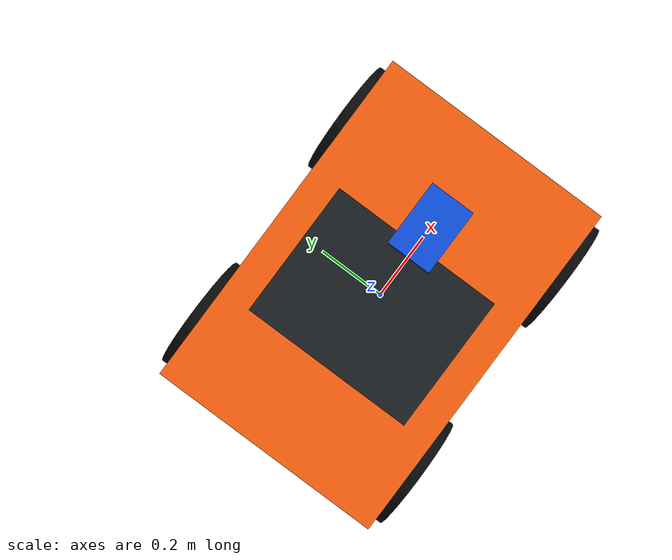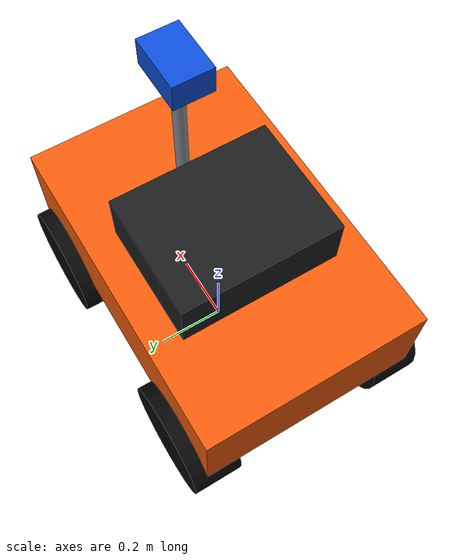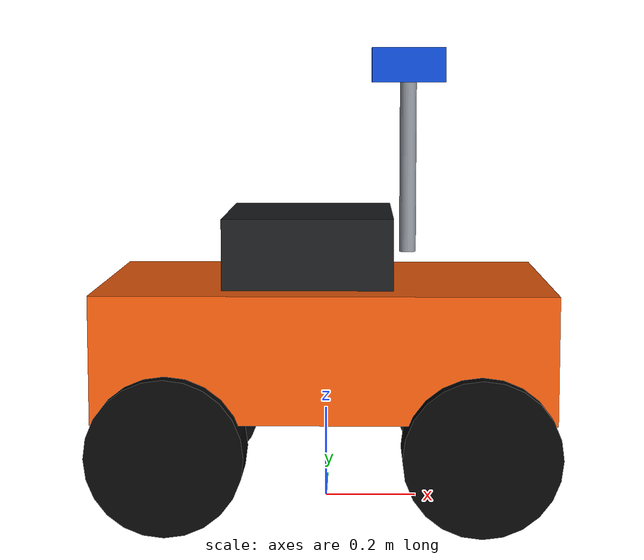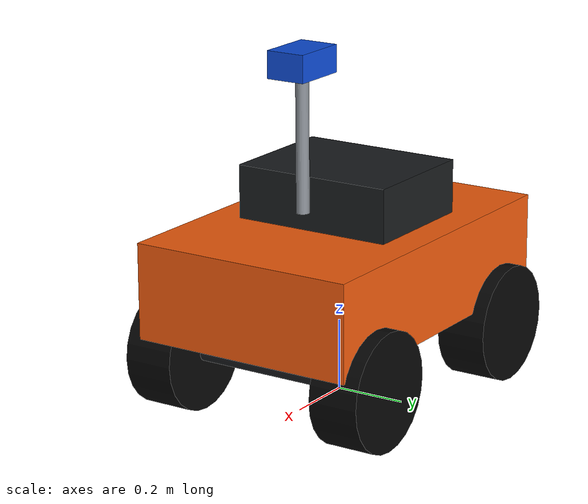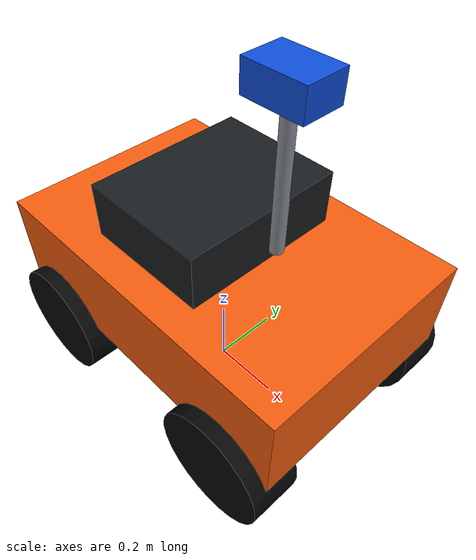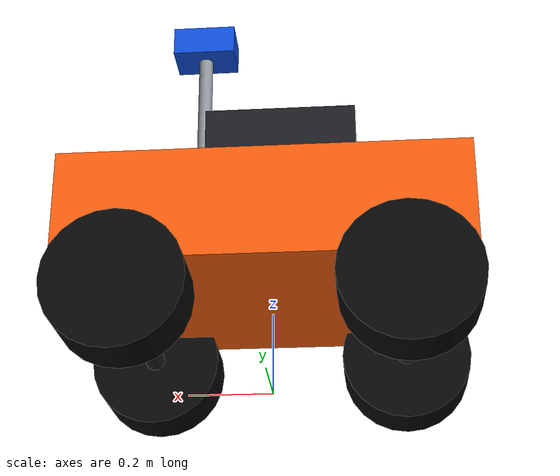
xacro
<?xml version="1.0"?>
<!-- Hunter-inspired Ackermann vehicle model for RViz / future Gazebo migration.
     Simple primitives preserve accurate dimensions, link frames and joint axes. -->
<robot name="ackermann_hunter" xmlns:xacro="http://www.ros.org/wiki/xacro">
  <xacro:arg name="prefix" default=""/>
  <xacro:property name="prefix" value="$(arg prefix)"/>

  <!-- ======================= Hunter-like dimensions ======================= -->
  <xacro:property name="wheelbase"       value="0.65142"/>
  <xacro:property name="track"           value="0.584"/>
  <xacro:property name="wheel_radius"    value="0.164"/>
  <xacro:property name="wheel_width"     value="0.142"/>
  <xacro:property name="body_length"     value="0.964"/>
  <xacro:property name="body_width"      value="0.644"/>
  <xacro:property name="body_height"     value="0.268"/>
  <xacro:property name="base_height"     value="0.360"/>
  <xacro:property name="wheel_z"         value="${wheel_radius - base_height}"/>

  <xacro:property name="body_mass"       value="35.0"/>
  <xacro:property name="wheel_mass"      value="2.0"/>
  <xacro:property name="steer_mass"      value="0.45"/>

  <xacro:macro name="box_inertia" params="m x y z">
    <inertial>
      <mass value="${m}"/>
      <inertia ixx="${m * (y*y + z*z) / 12.0}" ixy="0.0" ixz="0.0"
               iyy="${m * (x*x + z*z) / 12.0}" iyz="0.0"
               izz="${m * (x*x + y*y) / 12.0}"/>
    </inertial>
  </xacro:macro>

  <!-- Wheel axis is the link-frame Y axis. -->
  <xacro:macro name="wheel_inertia" params="m r w">
    <inertial>
      <mass value="${m}"/>
      <inertia ixx="${m * (3.0*r*r + w*w) / 12.0}" ixy="0.0" ixz="0.0"
               iyy="${m * r*r / 2.0}" iyz="0.0"
               izz="${m * (3.0*r*r + w*w) / 12.0}"/>
    </inertial>
  </xacro:macro>

  <material name="hunter_orange"><color rgba="0.95 0.36 0.05 1.0"/></material>
  <material name="hunter_dark"><color rgba="0.10 0.11 0.12 1.0"/></material>
  <material name="tyre_black"><color rgba="0.025 0.025 0.025 1.0"/></material>
  <material name="metal_gray"><color rgba="0.55 0.57 0.60 1.0"/></material>
  <material name="sensor_blue"><color rgba="0.05 0.30 0.85 1.0"/></material>

  <!-- ========================== Base / footprint ========================== -->
  <link name="${prefix}base_footprint"/>
  <joint name="${prefix}base_joint" type="fixed">
    <parent link="${prefix}base_footprint"/>
    <child link="${prefix}base_link"/>
    <origin xyz="0 0 ${base_height}" rpy="0 0 0"/>
  </joint>

  <link name="${prefix}base_link">
    <visual>
      <origin xyz="0 0 0" rpy="0 0 0"/>
      <geometry><box size="${body_length} ${body_width} ${body_height}"/></geometry>
      <material name="hunter_orange"/>
    </visual>
    <collision>
      <origin xyz="0 0 0" rpy="0 0 0"/>
      <geometry><box size="${body_length} ${body_width} ${body_height}"/></geometry>
    </collision>
    <xacro:box_inertia m="${body_mass}" x="${body_length}" y="${body_width}" z="${body_height}"/>
  </link>

  <link name="${prefix}cabin_link">
    <visual>
      <origin xyz="-0.035 0 ${body_height/2.0 + 0.075}" rpy="0 0 0"/>
      <geometry><box size="0.36 0.46 0.15"/></geometry>
      <material name="hunter_dark"/>
    </visual>
    <collision>
      <origin xyz="-0.035 0 ${body_height/2.0 + 0.075}" rpy="0 0 0"/>
      <geometry><box size="0.36 0.46 0.15"/></geometry>
    </collision>
    <xacro:box_inertia m="3.0" x="0.36" y="0.46" z="0.15"/>
  </link>
  <joint name="${prefix}cabin_joint" type="fixed">
    <parent link="${prefix}base_link"/>
    <child link="${prefix}cabin_link"/>
    <origin xyz="0 0 0" rpy="0 0 0"/>
  </joint>

  <link name="${prefix}sensor_mast_link">
    <visual>
      <origin xyz="0.18 0 ${body_height/2.0 + 0.25}" rpy="0 0 0"/>
      <geometry><cylinder radius="0.018" length="0.38"/></geometry>
      <material name="metal_gray"/>
    </visual>
    <collision>
      <origin xyz="0.18 0 ${body_height/2.0 + 0.25}" rpy="0 0 0"/>
      <geometry><cylinder radius="0.018" length="0.38"/></geometry>
    </collision>
    <xacro:box_inertia m="0.25" x="0.036" y="0.036" z="0.38"/>
  </link>
  <joint name="${prefix}sensor_mast_joint" type="fixed">
    <parent link="${prefix}base_link"/>
    <child link="${prefix}sensor_mast_link"/>
    <origin xyz="0 0 0" rpy="0 0 0"/>
  </joint>

  <link name="${prefix}sensor_head_link">
    <visual>
      <origin xyz="0.18 0 ${body_height/2.0 + 0.47}" rpy="0 0 0"/>
      <geometry><box size="0.16 0.11 0.075"/></geometry>
      <material name="sensor_blue"/>
    </visual>
    <collision>
      <origin xyz="0.18 0 ${body_height/2.0 + 0.47}" rpy="0 0 0"/>
      <geometry><box size="0.16 0.11 0.075"/></geometry>
    </collision>
    <xacro:box_inertia m="0.35" x="0.16" y="0.11" z="0.075"/>
  </link>
  <joint name="${prefix}sensor_head_joint" type="fixed">
    <parent link="${prefix}base_link"/>
    <child link="${prefix}sensor_head_link"/>
    <origin xyz="0 0 0" rpy="0 0 0"/>
  </joint>

  <!-- ===================== Wheel and steering macro ======================= -->
  <xacro:macro name="steered_wheel" params="side xyz">
    <link name="${prefix}front_${side}_steer_link">
      <visual>
        <origin xyz="0 0 0" rpy="0 0 0"/>
        <geometry><cylinder radius="0.040" length="0.055"/></geometry>
        <material name="metal_gray"/>
      </visual>
      <collision>
        <origin xyz="0 0 0" rpy="0 0 0"/>
        <geometry><cylinder radius="0.040" length="0.055"/></geometry>
      </collision>
      <xacro:box_inertia m="${steer_mass}" x="0.08" y="0.08" z="0.055"/>
    </link>

    <joint name="${prefix}front_${side}_steer_joint" type="revolute">
      <parent link="${prefix}base_link"/>
      <child link="${prefix}front_${side}_steer_link"/>
      <origin xyz="${xyz}" rpy="0 0 0"/>
      <axis xyz="0 0 1"/>
      <limit lower="-0.62" upper="0.62" effort="120.0" velocity="2.0"/>
      <dynamics damping="0.4" friction="0.05"/>
    </joint>

    <link name="${prefix}front_${side}_wheel_link">
      <visual>
        <origin xyz="0 0 0" rpy="1.57079632679 0 0"/>
        <geometry><cylinder radius="${wheel_radius}" length="${wheel_width}"/></geometry>
        <material name="tyre_black"/>
      </visual>
      <collision>
        <origin xyz="0 0 0" rpy="1.57079632679 0 0"/>
        <geometry><cylinder radius="${wheel_radius}" length="${wheel_width}"/></geometry>
      </collision>
      <xacro:wheel_inertia m="${wheel_mass}" r="${wheel_radius}" w="${wheel_width}"/>
    </link>

    <joint name="${prefix}front_${side}_wheel_joint" type="continuous">
      <parent link="${prefix}front_${side}_steer_link"/>
      <child link="${prefix}front_${side}_wheel_link"/>
      <origin xyz="0 0 0" rpy="0 0 0"/>
      <axis xyz="0 1 0"/>
      <limit effort="120.0" velocity="25.0"/>
      <dynamics damping="0.15" friction="0.03"/>
    </joint>
  </xacro:macro>

  <xacro:macro name="rear_wheel" params="side xyz">
    <link name="${prefix}rear_${side}_wheel_link">
      <visual>
        <origin xyz="0 0 0" rpy="1.57079632679 0 0"/>
        <geometry><cylinder radius="${wheel_radius}" length="${wheel_width}"/></geometry>
        <material name="tyre_black"/>
      </visual>
      <collision>
        <origin xyz="0 0 0" rpy="1.57079632679 0 0"/>
        <geometry><cylinder radius="${wheel_radius}" length="${wheel_width}"/></geometry>
      </collision>
      <xacro:wheel_inertia m="${wheel_mass}" r="${wheel_radius}" w="${wheel_width}"/>
    </link>

    <joint name="${prefix}rear_${side}_wheel_joint" type="continuous">
      <parent link="${prefix}base_link"/>
      <child link="${prefix}rear_${side}_wheel_link"/>
      <origin xyz="${xyz}" rpy="0 0 0"/>
      <axis xyz="0 1 0"/>
      <limit effort="120.0" velocity="25.0"/>
      <dynamics damping="0.15" friction="0.03"/>
    </joint>
  </xacro:macro>

  <xacro:steered_wheel side="left"  xyz="${wheelbase/2.0}  ${track/2.0} ${wheel_z}"/>
  <xacro:steered_wheel side="right" xyz="${wheelbase/2.0}  ${-track/2.0} ${wheel_z}"/>
  <xacro:rear_wheel    side="left"  xyz="${-wheelbase/2.0} ${track/2.0} ${wheel_z}"/>
  <xacro:rear_wheel    side="right" xyz="${-wheelbase/2.0} ${-track/2.0} ${wheel_z}"/>

  <!-- Axle housings are cosmetic but help convey a physical chassis. -->
  <link name="${prefix}front_axle_link">
    <visual>
      <origin xyz="${wheelbase/2.0} 0 ${wheel_z}" rpy="1.57079632679 0 0"/>
      <geometry><cylinder radius="0.025" length="${track - 0.10}"/></geometry>
      <material name="hunter_dark"/>
    </visual>
  </link>
  <joint name="${prefix}front_axle_joint" type="fixed">
    <parent link="${prefix}base_link"/>
    <child link="${prefix}front_axle_link"/>
    <origin xyz="0 0 0" rpy="0 0 0"/>
  </joint>

  <link name="${prefix}rear_axle_link">
    <visual>
      <origin xyz="${-wheelbase/2.0} 0 ${wheel_z}" rpy="1.57079632679 0 0"/>
      <geometry><cylinder radius="0.025" length="${track - 0.10}"/></geometry>
      <material name="hunter_dark"/>
    </visual>
  </link>
  <joint name="${prefix}rear_axle_joint" type="fixed">
    <parent link="${prefix}base_link"/>
    <child link="${prefix}rear_axle_link"/>
    <origin xyz="0 0 0" rpy="0 0 0"/>
  </joint>

  <!-- ==================== Gazebo Classic ros2_control ==================== -->
  <!-- The rear wheels provide traction; the front steering joints receive
       position commands.  The front wheel rolling joints are passive. -->
  <ros2_control name="AckermannGazeboSystem" type="system">
    <hardware>
      <plugin>gazebo_ros2_control/GazeboSystem</plugin>
    </hardware>

    <joint name="front_left_steer_joint">
      <command_interface name="position"/>
      <state_interface name="position"/>
      <state_interface name="velocity"/>
    </joint>
    <joint name="front_right_steer_joint">
      <command_interface name="position"/>
      <state_interface name="position"/>
      <state_interface name="velocity"/>
    </joint>
    <joint name="front_left_wheel_joint">
      <state_interface name="position"/>
      <state_interface name="velocity"/>
    </joint>
    <joint name="front_right_wheel_joint">
      <state_interface name="position"/>
      <state_interface name="velocity"/>
    </joint>
    <joint name="rear_left_wheel_joint">
      <command_interface name="velocity"/>
      <state_interface name="position"/>
      <state_interface name="velocity"/>
    </joint>
    <joint name="rear_right_wheel_joint">
      <command_interface name="velocity"/>
      <state_interface name="position"/>
      <state_interface name="velocity"/>
    </joint>
  </ros2_control>

  <gazebo reference="${prefix}base_link">
    <material>Gazebo/Orange</material>
    <mu1>0.1</mu1>
    <mu2>0.1</mu2>
  </gazebo>
  <gazebo reference="${prefix}cabin_link">
    <material>Gazebo/DarkGrey</material>
  </gazebo>
  <gazebo reference="${prefix}front_left_wheel_link">
    <material>Gazebo/Black</material>
    <mu1>1.2</mu1>
    <mu2>1.2</mu2>
    <kp>1000000.0</kp>
    <kd>100.0</kd>
  </gazebo>
  <gazebo reference="${prefix}front_right_wheel_link">
    <material>Gazebo/Black</material>
    <mu1>1.2</mu1>
    <mu2>1.2</mu2>
    <kp>1000000.0</kp>
    <kd>100.0</kd>
  </gazebo>
  <gazebo reference="${prefix}rear_left_wheel_link">
    <material>Gazebo/Black</material>
    <mu1>1.2</mu1>
    <mu2>1.2</mu2>
    <kp>1000000.0</kp>
    <kd>100.0</kd>
  </gazebo>
  <gazebo reference="${prefix}rear_right_wheel_link">
    <material>Gazebo/Black</material>
    <mu1>1.2</mu1>
    <mu2>1.2</mu2>
    <kp>1000000.0</kp>
    <kd>100.0</kd>
  </gazebo>

  <gazebo>
    <plugin filename="libgazebo_ros2_control.so" name="gazebo_ros2_control">
      <parameters>$(find ackermann_car_sim)/config/gazebo_controllers.yaml</parameters>
    </plugin>
  </gazebo>
</robot>
